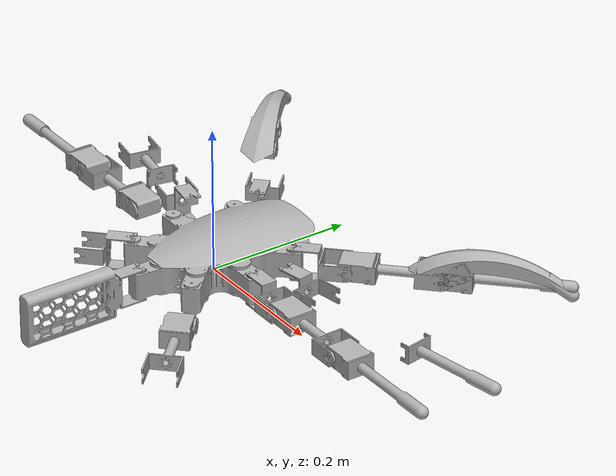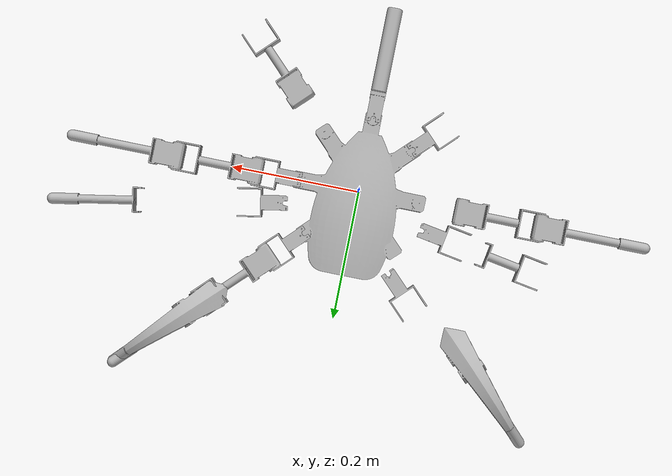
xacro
<?xml version="1.0" ?>
<robot name="nightmare" xmlns:xacro="http://www.ros.org/wiki/xacro">

<xacro:include filename="$(find nightmare_description)/urdf/materials.xacro" />
<xacro:include filename="$(find nightmare_description)/urdf/nightmare.trans" />
<xacro:include filename="$(find nightmare_description)/urdf/nightmare.gazebo" />
<link name="base_link">
  <inertial>
    <origin rpy="0 0 0" xyz="0.00027642737085348105 0.010613740030603296 0.02249920074743168"/>
    <mass value="5.757228845962151"/>
    <inertia ixx="0.023236" ixy="1.8e-05" ixz="0.0" iyy="0.013789" iyz="-0.001063" izz="0.033966"/>
  </inertial>
  <visual>
    <origin rpy="0 0 0" xyz="0 0 0"/>
    <geometry>
      <mesh filename="package://nightmare_description/meshes/base_link.stl" scale="0.001 0.001 0.001"/>
    </geometry>
    <material name="silver"/>
  </visual>
  <collision>
    <origin rpy="0 0 0" xyz="0 0 0"/>
    <geometry>
      <mesh filename="package://nightmare_description/meshes/base_link.stl" scale="0.001 0.001 0.001"/>
    </geometry>
  </collision>
</link>

<link name="leg_3_coxa_1">
  <inertial>
    <origin rpy="0 0 0" xyz="0.024052035496447563 -0.024052034022785593 -0.02050000171122137"/>
    <mass value="0.07378304798444445"/>
    <inertia ixx="3.2e-05" ixy="3e-06" ixz="-0.0" iyy="3.2e-05" iyz="0.0" izz="3.5e-05"/>
  </inertial>
  <visual>
    <origin rpy="0 0 0" xyz="-0.068335 0.078335 -0.0385"/>
    <geometry>
      <mesh filename="package://nightmare_description/meshes/leg_3_coxa_1.stl" scale="0.001 0.001 0.001"/>
    </geometry>
    <material name="silver"/>
  </visual>
  <collision>
    <origin rpy="0 0 0" xyz="-0.068335 0.078335 -0.0385"/>
    <geometry>
      <mesh filename="package://nightmare_description/meshes/leg_3_coxa_1.stl" scale="0.001 0.001 0.001"/>
    </geometry>
  </collision>
</link>

<link name="leg_2_coxa_1">
  <inertial>
    <origin rpy="0 0 0" xyz="0.03401538718261085 9.93696248999688e-10 -0.02050000171212193"/>
    <mass value="0.07378304722463921"/>
    <inertia ixx="2.9e-05" ixy="-0.0" ixz="-0.0" iyy="3.5e-05" iyz="0.0" izz="3.5e-05"/>
  </inertial>
  <visual>
    <origin rpy="0 0 0" xyz="-0.093 -0.0 -0.0385"/>
    <geometry>
      <mesh filename="package://nightmare_description/meshes/leg_2_coxa_1.stl" scale="0.001 0.001 0.001"/>
    </geometry>
    <material name="silver"/>
  </visual>
  <collision>
    <origin rpy="0 0 0" xyz="-0.093 -0.0 -0.0385"/>
    <geometry>
      <mesh filename="package://nightmare_description/meshes/leg_2_coxa_1.stl" scale="0.001 0.001 0.001"/>
    </geometry>
  </collision>
</link>

<link name="leg_1_coxa_1">
  <inertial>
    <origin rpy="0 0 0" xyz="0.02405203401918829 0.02405203542330879 -0.020500001712213764"/>
    <mass value="0.07378304682101164"/>
    <inertia ixx="3.2e-05" ixy="-3e-06" ixz="-0.0" iyy="3.2e-05" iyz="-0.0" izz="3.5e-05"/>
  </inertial>
  <visual>
    <origin rpy="0 0 0" xyz="-0.068335 -0.078335 -0.0385"/>
    <geometry>
      <mesh filename="package://nightmare_description/meshes/leg_1_coxa_1.stl" scale="0.001 0.001 0.001"/>
    </geometry>
    <material name="silver"/>
  </visual>
  <collision>
    <origin rpy="0 0 0" xyz="-0.068335 -0.078335 -0.0385"/>
    <geometry>
      <mesh filename="package://nightmare_description/meshes/leg_1_coxa_1.stl" scale="0.001 0.001 0.001"/>
    </geometry>
  </collision>
</link>

<link name="leg_6_coxa_1">
  <inertial>
    <origin rpy="0 0 0" xyz="-0.02405203564458211 0.024052033797916067 -0.02050000171221522"/>
    <mass value="0.07378304682101106"/>
    <inertia ixx="3.2e-05" ixy="3e-06" ixz="0.0" iyy="3.2e-05" iyz="-0.0" izz="3.5e-05"/>
  </inertial>
  <visual>
    <origin rpy="0 0 0" xyz="0.068335 -0.078335 -0.0385"/>
    <geometry>
      <mesh filename="package://nightmare_description/meshes/leg_6_coxa_1.stl" scale="0.001 0.001 0.001"/>
    </geometry>
    <material name="silver"/>
  </visual>
  <collision>
    <origin rpy="0 0 0" xyz="0.068335 -0.078335 -0.0385"/>
    <geometry>
      <mesh filename="package://nightmare_description/meshes/leg_6_coxa_1.stl" scale="0.001 0.001 0.001"/>
    </geometry>
  </collision>
</link>

<link name="leg_5_coxa_1">
  <inertial>
    <origin rpy="0 0 0" xyz="-0.03401538721464084 -1.3253429337074102e-09 -0.0205000017130063"/>
    <mass value="0.07378304630679161"/>
    <inertia ixx="2.9e-05" ixy="-0.0" ixz="0.0" iyy="3.5e-05" iyz="0.0" izz="3.5e-05"/>
  </inertial>
  <visual>
    <origin rpy="0 0 0" xyz="0.093 0.0005 -0.0385"/>
    <geometry>
      <mesh filename="package://nightmare_description/meshes/leg_5_coxa_1.stl" scale="0.001 0.001 0.001"/>
    </geometry>
    <material name="silver"/>
  </visual>
  <collision>
    <origin rpy="0 0 0" xyz="0.093 0.0005 -0.0385"/>
    <geometry>
      <mesh filename="package://nightmare_description/meshes/leg_5_coxa_1.stl" scale="0.001 0.001 0.001"/>
    </geometry>
  </collision>
</link>

<link name="leg_4_coxa_1">
  <inertial>
    <origin rpy="0 0 0" xyz="-0.024052033984224647 -0.024052036049472092 -0.020500001713658775"/>
    <mass value="0.07378304447579094"/>
    <inertia ixx="3.2e-05" ixy="-3e-06" ixz="0.0" iyy="3.2e-05" iyz="0.0" izz="3.5e-05"/>
  </inertial>
  <visual>
    <origin rpy="0 0 0" xyz="0.068335 0.078335 -0.0385"/>
    <geometry>
      <mesh filename="package://nightmare_description/meshes/leg_4_coxa_1.stl" scale="0.001 0.001 0.001"/>
    </geometry>
    <material name="silver"/>
  </visual>
  <collision>
    <origin rpy="0 0 0" xyz="0.068335 0.078335 -0.0385"/>
    <geometry>
      <mesh filename="package://nightmare_description/meshes/leg_4_coxa_1.stl" scale="0.001 0.001 0.001"/>
    </geometry>
  </collision>
</link>

<link name="leg_3_femur_1">
  <inertial>
    <origin rpy="0 0 0" xyz="0.002811166294498485 -0.03199817277076898 -2.644789265403985e-05"/>
    <mass value="0.39294361739912087"/>
    <inertia ixx="0.000228" ixy="0.000159" ixz="0.0" iyy="0.000233" iyz="-0.0" izz="0.000423"/>
  </inertial>
  <visual>
    <origin rpy="0 0 0" xyz="-0.130935 0.111944 -0.018"/>
    <geometry>
      <mesh filename="package://nightmare_description/meshes/leg_3_femur_1.stl" scale="0.001 0.001 0.001"/>
    </geometry>
    <material name="silver"/>
  </visual>
  <collision>
    <origin rpy="0 0 0" xyz="-0.130935 0.111944 -0.018"/>
    <geometry>
      <mesh filename="package://nightmare_description/meshes/leg_3_femur_1.stl" scale="0.001 0.001 0.001"/>
    </geometry>
  </collision>
</link>

<link name="leg_2_femur_1">
  <inertial>
    <origin rpy="0 0 0" xyz="0.024613629490825878 -0.02063859750853185 -2.6447892664531458e-05"/>
    <mass value="0.3929436173991593"/>
    <inertia ixx="7.1e-05" ixy="-3e-06" ixz="1e-06" iyy="0.00039" iyz="0.0" izz="0.000423"/>
  </inertial>
  <visual>
    <origin rpy="0 0 0" xyz="-0.161031 -0.0205 -0.018"/>
    <geometry>
      <mesh filename="package://nightmare_description/meshes/leg_2_femur_1.stl" scale="0.001 0.001 0.001"/>
    </geometry>
    <material name="silver"/>
  </visual>
  <collision>
    <origin rpy="0 0 0" xyz="-0.161031 -0.0205 -0.018"/>
    <geometry>
      <mesh filename="package://nightmare_description/meshes/leg_2_femur_1.stl" scale="0.001 0.001 0.001"/>
    </geometry>
  </collision>
</link>

<link name="leg_1_femur_1">
  <inertial>
    <origin rpy="0 0 0" xyz="0.031998172770773436 0.0028111662944979576 -2.6447892665853318e-05"/>
    <mass value="0.39294361739913425"/>
    <inertia ixx="0.000233" ixy="-0.000159" ixz="0.0" iyy="0.000228" iyz="0.0" izz="0.000423"/>
  </inertial>
  <visual>
    <origin rpy="0 0 0" xyz="-0.101944 -0.140935 -0.018"/>
    <geometry>
      <mesh filename="package://nightmare_description/meshes/leg_1_femur_1.stl" scale="0.001 0.001 0.001"/>
    </geometry>
    <material name="silver"/>
  </visual>
  <collision>
    <origin rpy="0 0 0" xyz="-0.101944 -0.140935 -0.018"/>
    <geometry>
      <mesh filename="package://nightmare_description/meshes/leg_1_femur_1.stl" scale="0.001 0.001 0.001"/>
    </geometry>
  </collision>
</link>

<link name="leg_6_femur_1">
  <inertial>
    <origin rpy="0 0 0" xyz="-0.0318021665157692 0.0030071725494985047 -2.6447892670266454e-05"/>
    <mass value="0.39294361739916434"/>
    <inertia ixx="0.000228" ixy="0.000159" ixz="-0.0" iyy="0.000233" iyz="0.0" izz="0.000423"/>
  </inertial>
  <visual>
    <origin rpy="0 0 0" xyz="0.101944 -0.140935 -0.018"/>
    <geometry>
      <mesh filename="package://nightmare_description/meshes/leg_6_femur_1.stl" scale="0.001 0.001 0.001"/>
    </geometry>
    <material name="silver"/>
  </visual>
  <collision>
    <origin rpy="0 0 0" xyz="0.101944 -0.140935 -0.018"/>
    <geometry>
      <mesh filename="package://nightmare_description/meshes/leg_6_femur_1.stl" scale="0.001 0.001 0.001"/>
    </geometry>
  </collision>
</link>

<link name="leg_5_femur_2">
  <inertial>
    <origin rpy="0 0 0" xyz="-0.02461362953833532 -0.020361402859740193 -2.6447930872065817e-05"/>
    <mass value="0.39294361912861614"/>
    <inertia ixx="7.1e-05" ixy="-3e-06" ixz="-1e-06" iyy="0.00039" iyz="-0.0" izz="0.000423"/>
  </inertial>
  <visual>
    <origin rpy="0 0 0" xyz="0.161031 -0.02 -0.018"/>
    <geometry>
      <mesh filename="package://nightmare_description/meshes/leg_5_femur_2.stl" scale="0.001 0.001 0.001"/>
    </geometry>
    <material name="silver"/>
  </visual>
  <collision>
    <origin rpy="0 0 0" xyz="0.161031 -0.02 -0.018"/>
    <geometry>
      <mesh filename="package://nightmare_description/meshes/leg_5_femur_2.stl" scale="0.001 0.001 0.001"/>
    </geometry>
  </collision>
</link>

<link name="leg_4_femur_2">
  <inertial>
    <origin rpy="0 0 0" xyz="-0.0030071725439563823 -0.03180216658850006 -2.64479308710458e-05"/>
    <mass value="0.392943619128609"/>
    <inertia ixx="0.000233" ixy="-0.000159" ixz="-0.0" iyy="0.000228" iyz="-0.0" izz="0.000423"/>
  </inertial>
  <visual>
    <origin rpy="0 0 0" xyz="0.130935 0.111944 -0.018"/>
    <geometry>
      <mesh filename="package://nightmare_description/meshes/leg_4_femur_2.stl" scale="0.001 0.001 0.001"/>
    </geometry>
    <material name="silver"/>
  </visual>
  <collision>
    <origin rpy="0 0 0" xyz="0.130935 0.111944 -0.018"/>
    <geometry>
      <mesh filename="package://nightmare_description/meshes/leg_4_femur_2.stl" scale="0.001 0.001 0.001"/>
    </geometry>
  </collision>
</link>

<link name="tail_link_1">
  <inertial>
    <origin rpy="0 0 0" xyz="5.8648452051355135e-05 -0.08077626610844917 -0.02049313021079149"/>
    <mass value="0.34035116757413375"/>
    <inertia ixx="0.001009" ixy="0.0" ixz="-0.0" iyy="0.000204" iyz="-2e-06" izz="0.000846"/>
  </inertial>
  <visual>
    <origin rpy="0 0 0" xyz="-0.0 0.113 -0.0385"/>
    <geometry>
      <mesh filename="package://nightmare_description/meshes/tail_link_1.stl" scale="0.001 0.001 0.001"/>
    </geometry>
    <material name="silver"/>
  </visual>
  <collision>
    <origin rpy="0 0 0" xyz="-0.0 0.113 -0.0385"/>
    <geometry>
      <mesh filename="package://nightmare_description/meshes/tail_link_1.stl" scale="0.001 0.001 0.001"/>
    </geometry>
  </collision>
</link>

<link name="leg_1_tibia_2">
  <inertial>
    <origin rpy="0 0 0" xyz="0.04597168022169831 0.016860788290768453 0.015065036661186085"/>
    <mass value="0.9516929282440427"/>
    <inertia ixx="0.001279" ixy="-0.001095" ixz="-1.5e-05" iyy="0.001324" iyz="-1.8e-05" izz="0.002344"/>
  </inertial>
  <visual>
    <origin rpy="0 0 0" xyz="-0.189204 -0.228903 -0.017821"/>
    <geometry>
      <mesh filename="package://nightmare_description/meshes/leg_1_tibia_2.stl" scale="0.001 0.001 0.001"/>
    </geometry>
    <material name="silver"/>
  </visual>
  <collision>
    <origin rpy="0 0 0" xyz="-0.189204 -0.228903 -0.017821"/>
    <geometry>
      <mesh filename="package://nightmare_description/meshes/leg_1_tibia_2.stl" scale="0.001 0.001 0.001"/>
    </geometry>
  </collision>
</link>

<link name="leg_2_tibia_1">
  <inertial>
    <origin rpy="0 0 0" xyz="0.04442888153142993 -0.020584144796290275 0.0150650361958693"/>
    <mass value="0.9516929282440427"/>
    <inertia ixx="0.000206" ixy="2.2e-05" ixz="-2.3e-05" iyy="0.002396" iyz="-2e-06" izz="0.002344"/>
  </inertial>
  <visual>
    <origin rpy="0 0 0" xyz="-0.284936 -0.021 -0.017821"/>
    <geometry>
      <mesh filename="package://nightmare_description/meshes/leg_2_tibia_1.stl" scale="0.001 0.001 0.001"/>
    </geometry>
    <material name="silver"/>
  </visual>
  <collision>
    <origin rpy="0 0 0" xyz="-0.284936 -0.021 -0.017821"/>
    <geometry>
      <mesh filename="package://nightmare_description/meshes/leg_2_tibia_1.stl" scale="0.001 0.001 0.001"/>
    </geometry>
  </collision>
</link>

<link name="leg_3_tibia_1">
  <inertial>
    <origin rpy="0 0 0" xyz="0.016860788832001927 -0.045971679856765535 0.015065036195894974"/>
    <mass value="0.9516929282440427"/>
    <inertia ixx="0.001324" ixy="0.001095" ixz="-1.8e-05" iyy="0.001279" iyz="1.5e-05" izz="0.002344"/>
  </inertial>
  <visual>
    <origin rpy="0 0 0" xyz="-0.218903 0.199204 -0.017821"/>
    <geometry>
      <mesh filename="package://nightmare_description/meshes/leg_3_tibia_1.stl" scale="0.001 0.001 0.001"/>
    </geometry>
    <material name="silver"/>
  </visual>
  <collision>
    <origin rpy="0 0 0" xyz="-0.218903 0.199204 -0.017821"/>
    <geometry>
      <mesh filename="package://nightmare_description/meshes/leg_3_tibia_1.stl" scale="0.001 0.001 0.001"/>
    </geometry>
  </collision>
</link>

<link name="leg_4_tibia_1">
  <inertial>
    <origin rpy="0 0 0" xyz="-0.016979679635497652 -0.04585278905326559 0.015065036195897347"/>
    <mass value="0.9516929282440427"/>
    <inertia ixx="0.001279" ixy="-0.001095" ixz="1.5e-05" iyy="0.001324" iyz="1.8e-05" izz="0.002344"/>
  </inertial>
  <visual>
    <origin rpy="0 0 0" xyz="0.218196 0.199911 -0.017821"/>
    <geometry>
      <mesh filename="package://nightmare_description/meshes/leg_4_tibia_1.stl" scale="0.001 0.001 0.001"/>
    </geometry>
    <material name="silver"/>
  </visual>
  <collision>
    <origin rpy="0 0 0" xyz="0.218196 0.199911 -0.017821"/>
    <geometry>
      <mesh filename="package://nightmare_description/meshes/leg_4_tibia_1.stl" scale="0.001 0.001 0.001"/>
    </geometry>
  </collision>
</link>

<link name="leg_5_tibia_1">
  <inertial>
    <origin rpy="0 0 0" xyz="-0.04442888153142355 -0.02041585551662712 0.015065036195890901"/>
    <mass value="0.9516929282440427"/>
    <inertia ixx="0.000206" ixy="2.2e-05" ixz="2.3e-05" iyy="0.002396" iyz="2e-06" izz="0.002344"/>
  </inertial>
  <visual>
    <origin rpy="0 0 0" xyz="0.284936 -0.0195 -0.017821"/>
    <geometry>
      <mesh filename="package://nightmare_description/meshes/leg_5_tibia_1.stl" scale="0.001 0.001 0.001"/>
    </geometry>
    <material name="silver"/>
  </visual>
  <collision>
    <origin rpy="0 0 0" xyz="0.284936 -0.0195 -0.017821"/>
    <geometry>
      <mesh filename="package://nightmare_description/meshes/leg_5_tibia_1.stl" scale="0.001 0.001 0.001"/>
    </geometry>
  </collision>
</link>

<link name="leg_6_tibia_1">
  <inertial>
    <origin rpy="0 0 0" xyz="-0.0458527886001843 0.01697968008857778 0.015065036195873956"/>
    <mass value="0.9516929282440427"/>
    <inertia ixx="0.001324" ixy="0.001095" ixz="1.8e-05" iyy="0.001279" iyz="-1.5e-05" izz="0.002344"/>
  </inertial>
  <visual>
    <origin rpy="0 0 0" xyz="0.189911 -0.228196 -0.017821"/>
    <geometry>
      <mesh filename="package://nightmare_description/meshes/leg_6_tibia_1.stl" scale="0.001 0.001 0.001"/>
    </geometry>
    <material name="silver"/>
  </visual>
  <collision>
    <origin rpy="0 0 0" xyz="0.189911 -0.228196 -0.017821"/>
    <geometry>
      <mesh filename="package://nightmare_description/meshes/leg_6_tibia_1.stl" scale="0.001 0.001 0.001"/>
    </geometry>
  </collision>
</link>

<joint name="leg3coxa" type="continuous">
  <origin rpy="0 0 0" xyz="0.068335 -0.078335 0.0385"/>
  <parent link="base_link"/>
  <child link="leg_3_coxa_1"/>
  <axis xyz="-0.0 -0.0 -1.0"/>
</joint>

<joint name="leg2coxa" type="continuous">
  <origin rpy="0 0 0" xyz="0.093 0.0 0.0385"/>
  <parent link="base_link"/>
  <child link="leg_2_coxa_1"/>
  <axis xyz="-0.0 0.0 -1.0"/>
</joint>

<joint name="leg1coxa" type="continuous">
  <origin rpy="0 0 0" xyz="0.068335 0.078335 0.0385"/>
  <parent link="base_link"/>
  <child link="leg_1_coxa_1"/>
  <axis xyz="0.0 -0.0 -1.0"/>
</joint>

<joint name="leg6coxa" type="continuous">
  <origin rpy="0 0 0" xyz="-0.068335 0.078335 0.0385"/>
  <parent link="base_link"/>
  <child link="leg_6_coxa_1"/>
  <axis xyz="0.0 -0.0 -1.0"/>
</joint>

<joint name="leg5coxa" type="continuous">
  <origin rpy="0 0 0" xyz="-0.093 -0.0005 0.0385"/>
  <parent link="base_link"/>
  <child link="leg_5_coxa_1"/>
  <axis xyz="-0.0 0.0 -1.0"/>
</joint>

<joint name="leg4coxa" type="continuous">
  <origin rpy="0 0 0" xyz="-0.068335 -0.078335 0.0385"/>
  <parent link="base_link"/>
  <child link="leg_4_coxa_1"/>
  <axis xyz="-0.0 0.0 -1.0"/>
</joint>

<joint name="leg3femur" type="continuous">
  <origin rpy="0 0 0" xyz="0.0626 -0.033609 -0.0205"/>
  <parent link="leg_3_coxa_1"/>
  <child link="leg_3_femur_1"/>
  <axis xyz="-0.707107 -0.707107 0.0"/>
</joint>

<joint name="leg2femur" type="continuous">
  <origin rpy="0 0 0" xyz="0.068031 0.0205 -0.0205"/>
  <parent link="leg_2_coxa_1"/>
  <child link="leg_2_femur_1"/>
  <axis xyz="-0.0 -1.0 -0.0"/>
</joint>

<joint name="leg1femur" type="continuous">
  <origin rpy="0 0 0" xyz="0.033609 0.0626 -0.0205"/>
  <parent link="leg_1_coxa_1"/>
  <child link="leg_1_femur_1"/>
  <axis xyz="0.707107 -0.707107 0.0"/>
</joint>

<joint name="leg6femur" type="continuous">
  <origin rpy="0 0 0" xyz="-0.033609 0.0626 -0.0205"/>
  <parent link="leg_6_coxa_1"/>
  <child link="leg_6_femur_1"/>
  <axis xyz="0.707107 0.707107 -0.0"/>
</joint>

<joint name="leg5femur" type="continuous">
  <origin rpy="0 0 0" xyz="-0.068031 0.0205 -0.0205"/>
  <parent link="leg_5_coxa_1"/>
  <child link="leg_5_femur_2"/>
  <axis xyz="0.0 1.0 0.0"/>
</joint>

<joint name="leg4femur" type="continuous">
  <origin rpy="0 0 0" xyz="-0.0626 -0.033609 -0.0205"/>
  <parent link="leg_4_coxa_1"/>
  <child link="leg_4_femur_2"/>
  <axis xyz="-0.707107 0.707107 0.0"/>
</joint>

<joint name="tail_joint" type="continuous">
  <origin rpy="0 0 0" xyz="0.0 -0.113 0.0385"/>
  <parent link="base_link"/>
  <child link="tail_link_1"/>
  <axis xyz="-0.0 0.0 -1.0"/>
</joint>

<joint name="leg1tibia" type="continuous">
  <origin rpy="0 0 0" xyz="0.08726 0.087968 -0.000179"/>
  <parent link="leg_1_femur_1"/>
  <child link="leg_1_tibia_2"/>
  <axis xyz="0.707107 -0.707107 -0.0"/>
</joint>

<joint name="leg2tibia" type="continuous">
  <origin rpy="0 0 0" xyz="0.123905 0.0005 -0.000179"/>
  <parent link="leg_2_femur_1"/>
  <child link="leg_2_tibia_1"/>
  <axis xyz="0.0 -1.0 -0.0"/>
</joint>

<joint name="leg3tibia" type="continuous">
  <origin rpy="0 0 0" xyz="0.087968 -0.08726 -0.000179"/>
  <parent link="leg_3_femur_1"/>
  <child link="leg_3_tibia_1"/>
  <axis xyz="-0.707107 -0.707107 -0.0"/>
</joint>

<joint name="leg4tibia" type="continuous">
  <origin rpy="0 0 0" xyz="-0.087261 -0.087967 -0.000179"/>
  <parent link="leg_4_femur_2"/>
  <child link="leg_4_tibia_1"/>
  <axis xyz="-0.707107 0.707107 -0.0"/>
</joint>

<joint name="leg5tibia" type="continuous">
  <origin rpy="0 0 0" xyz="-0.123905 -0.0005 -0.000179"/>
  <parent link="leg_5_femur_2"/>
  <child link="leg_5_tibia_1"/>
  <axis xyz="0.0 1.0 -0.0"/>
</joint>

<joint name="leg6tibia" type="continuous">
  <origin rpy="0 0 0" xyz="-0.087967 0.087261 -0.000179"/>
  <parent link="leg_6_femur_1"/>
  <child link="leg_6_tibia_1"/>
  <axis xyz="0.707107 0.707107 -0.0"/>
</joint>

</robot>

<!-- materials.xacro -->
<robot name="nightmare" xmlns:xacro="http://www.ros.org/wiki/xacro" >

<material name="silver">
  <color rgba="0.700 0.700 0.700 1.000"/>
</material>

</robot>

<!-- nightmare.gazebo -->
<robot name="nightmare" xmlns:xacro="http://www.ros.org/wiki/xacro" >

<xacro:property name="body_color" value="Gazebo/Silver" />

<gazebo>
  <plugin name="gazebo_ros_control" filename="libgazebo_ros_control.so">
    <robotNamespace>/nightmare</robotNamespace>
  </plugin>
</gazebo>

<gazebo reference="body_link">
  <material>${body_color}</material>
  <mu1>0.2</mu1>
  <mu2>0.2</mu2>
  <selfCollide>true</selfCollide>
  <gravity>true</gravity>
</gazebo>

<gazebo reference="leg_3_coxa_1">
  <material>${body_color}</material>
  <mu1>0.2</mu1>
  <mu2>0.2</mu2>
  <selfCollide>true</selfCollide>
</gazebo>

<gazebo reference="leg_2_coxa_1">
  <material>${body_color}</material>
  <mu1>0.2</mu1>
  <mu2>0.2</mu2>
  <selfCollide>true</selfCollide>
</gazebo>

<gazebo reference="leg_1_coxa_1">
  <material>${body_color}</material>
  <mu1>0.2</mu1>
  <mu2>0.2</mu2>
  <selfCollide>true</selfCollide>
</gazebo>

<gazebo reference="leg_6_coxa_1">
  <material>${body_color}</material>
  <mu1>0.2</mu1>
  <mu2>0.2</mu2>
  <selfCollide>true</selfCollide>
</gazebo>

<gazebo reference="leg_5_coxa_1">
  <material>${body_color}</material>
  <mu1>0.2</mu1>
  <mu2>0.2</mu2>
  <selfCollide>true</selfCollide>
</gazebo>

<gazebo reference="leg_4_coxa_1">
  <material>${body_color}</material>
  <mu1>0.2</mu1>
  <mu2>0.2</mu2>
  <selfCollide>true</selfCollide>
</gazebo>

<gazebo reference="leg_3_femur_1">
  <material>${body_color}</material>
  <mu1>0.2</mu1>
  <mu2>0.2</mu2>
  <selfCollide>true</selfCollide>
</gazebo>

<gazebo reference="leg_2_femur_1">
  <material>${body_color}</material>
  <mu1>0.2</mu1>
  <mu2>0.2</mu2>
  <selfCollide>true</selfCollide>
</gazebo>

<gazebo reference="leg_1_femur_1">
  <material>${body_color}</material>
  <mu1>0.2</mu1>
  <mu2>0.2</mu2>
  <selfCollide>true</selfCollide>
</gazebo>

<gazebo reference="leg_6_femur_1">
  <material>${body_color}</material>
  <mu1>0.2</mu1>
  <mu2>0.2</mu2>
  <selfCollide>true</selfCollide>
</gazebo>

<gazebo reference="leg_5_femur_2">
  <material>${body_color}</material>
  <mu1>0.2</mu1>
  <mu2>0.2</mu2>
  <selfCollide>true</selfCollide>
</gazebo>

<gazebo reference="leg_4_femur_2">
  <material>${body_color}</material>
  <mu1>0.2</mu1>
  <mu2>0.2</mu2>
  <selfCollide>true</selfCollide>
</gazebo>

<gazebo reference="tail_link_1">
  <material>${body_color}</material>
  <mu1>0.2</mu1>
  <mu2>0.2</mu2>
  <selfCollide>true</selfCollide>
</gazebo>

<gazebo reference="leg_1_tibia_2">
  <material>${body_color}</material>
  <mu1>0.2</mu1>
  <mu2>0.2</mu2>
  <selfCollide>true</selfCollide>
</gazebo>

<gazebo reference="leg_2_tibia_1">
  <material>${body_color}</material>
  <mu1>0.2</mu1>
  <mu2>0.2</mu2>
  <selfCollide>true</selfCollide>
</gazebo>

<gazebo reference="leg_3_tibia_1">
  <material>${body_color}</material>
  <mu1>0.2</mu1>
  <mu2>0.2</mu2>
  <selfCollide>true</selfCollide>
</gazebo>

<gazebo reference="leg_4_tibia_1">
  <material>${body_color}</material>
  <mu1>0.2</mu1>
  <mu2>0.2</mu2>
  <selfCollide>true</selfCollide>
</gazebo>

<gazebo reference="leg_5_tibia_1">
  <material>${body_color}</material>
  <mu1>0.2</mu1>
  <mu2>0.2</mu2>
  <selfCollide>true</selfCollide>
</gazebo>

<gazebo reference="leg_6_tibia_1">
  <material>${body_color}</material>
  <mu1>0.2</mu1>
  <mu2>0.2</mu2>
  <selfCollide>true</selfCollide>
</gazebo>

</robot>
